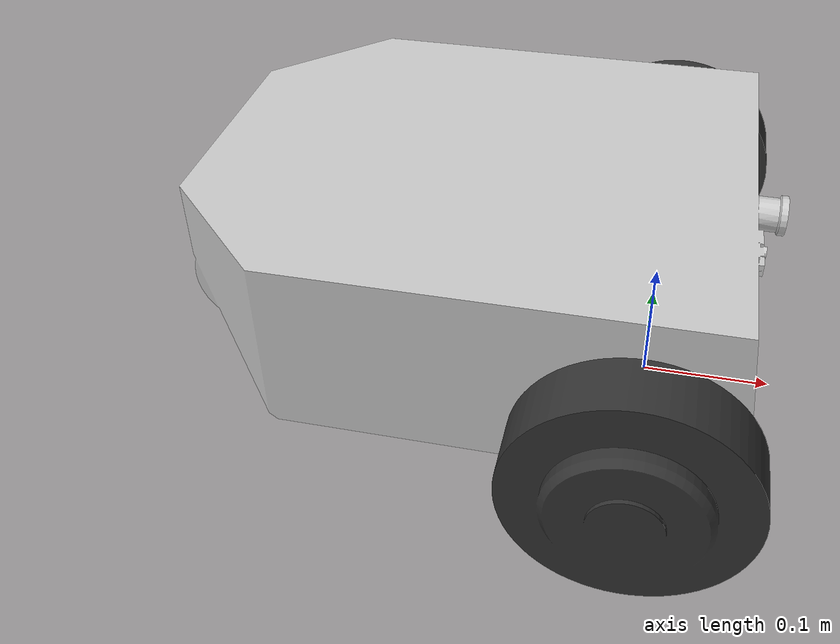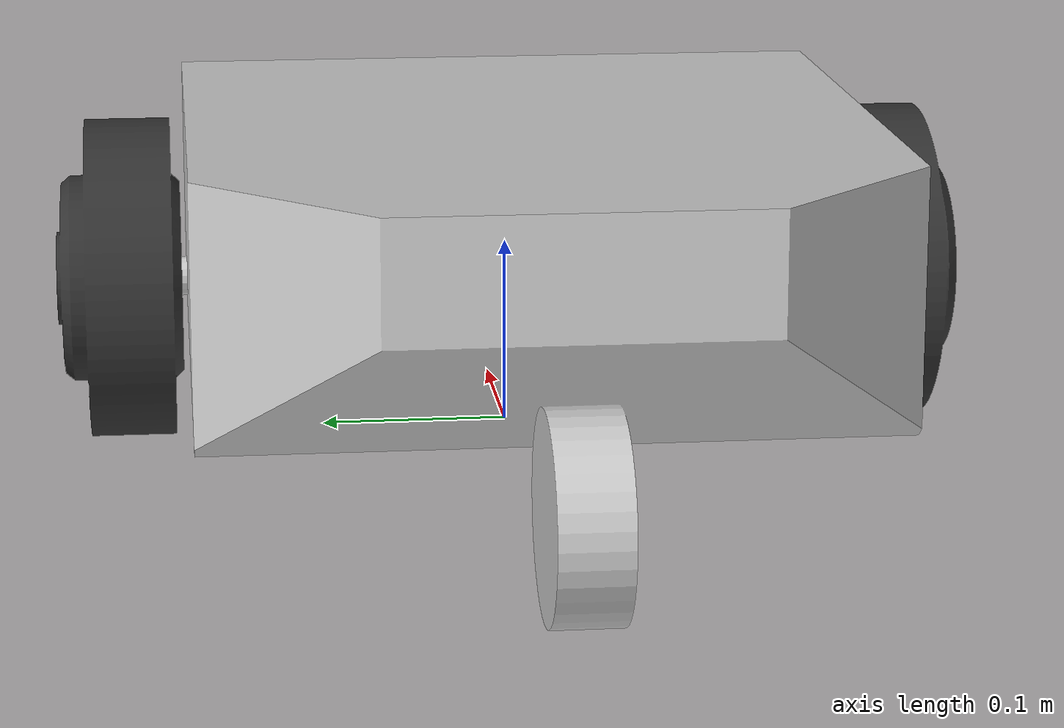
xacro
<?xml version="1.0" ?>
<robot name="f120a" xmlns:xacro="http://www.ros.org/wiki/xacro">

<xacro:include filename="$(find f120a_description)/urdf/materials.xacro" />
<xacro:include filename="$(find f120a_description)/urdf/f120a.gazebo" />

<link name="base_footprint" />

<joint name="base_joint" type="fixed">
  <parent link="base_footprint"/>
  <child link="base_link" />
  <origin xyz="-0.108 0 0" rpy="0 0 -1.5708"/>
</joint>

<link name="base_link">
  <inertial>
    <origin xyz="6.540114906371634e-07 -0.003250873034356485 0.120269680948673" rpy="0 0 0"/>
    <mass value="26.535431"/>
    <inertia ixx="0.2129" iyy="0.2979" izz="0.4209"
             ixy="-0.000036" iyz="0.008147"
             ixz="0.0000368"/>
  </inertial>
  <visual>
    <origin xyz="0 0 0" rpy="0 0 0"/>
    <geometry>
      <mesh filename="package://f120a_description/meshes/base_link.stl" scale="0.001 0.001 0.001"/>
    </geometry>
    <material name="silver"/>
  </visual>
  <collision>
    <origin xyz="0 0 0" rpy="0 0 0"/>
    <geometry>
      <mesh filename="package://f120a_description/meshes/base_link.stl" scale="0.001 0.001 0.001"/>
    </geometry>
  </collision>
</link>

<link name="right_wheel_1">
  <inertial>
    <origin xyz="0.0 0.0 -0.001" rpy="0 1.5708 0"/>
    <mass value="3.241197"/>
    <inertia ixx="0.01025" iyy="0.00621" izz="0.006211"
             ixy="0.0" iyz="0.0"
             ixz="0.0"/>
  </inertial>
  <visual>
    <origin xyz="-0.085 -0.108 0.202" rpy="0 1.5708 0"/>
    <geometry>
      <mesh filename="package://f120a_description/meshes/right_wheel_1.stl" scale="0.001 0.001 0.001"/>
    </geometry>
    <material name="dark_grey"/>
  </visual>
  <collision>
    <origin xyz="-0.085 -0.108 0.202" rpy="0 1.5708 0"/>
    <geometry>
      <mesh filename="package://f120a_description/meshes/right_wheel_1.stl" scale="0.001 0.001 0.001"/>
    </geometry>
  </collision>
</link>

<link name="left_wheel_1">
  <inertial>
    <origin xyz="0.0 0.0 0.001" rpy="0 1.5708 0"/>
    <mass value="3.241197"/>
    <inertia ixx="0.01025" iyy="0.00621" izz="0.006211"
             ixy="0.0" iyz="0.0"
             ixz="0.0"/>
  </inertial>
  <visual>
    <origin xyz="-0.085 -0.108 -0.202" rpy="0 1.5708 0"/>
    <geometry>
      <mesh filename="package://f120a_description/meshes/left_wheel_1.stl" scale="0.001 0.001 0.001"/>
    </geometry>
    <material name="dark_grey"/>
  </visual>
  <collision>
    <origin xyz="-0.085 -0.108 -0.202" rpy="0 1.5708 0"/>
    <geometry>
      <mesh filename="package://f120a_description/meshes/left_wheel_1.stl" scale="0.001 0.001 0.001"/>
    </geometry>
  </collision>
</link>

<joint name="right_wheel_joint" type="continuous">
  <origin xyz="0.202 0.108 0.085" rpy="0 -1.5708 0"/>
  <parent link="base_link"/>
  <child link="right_wheel_1"/>
  <axis xyz="0.0 0.0 1.0"/>
</joint>

<joint name="left_wheel_joint" type="continuous">
  <origin xyz="-0.202 0.108 0.085" rpy="0 -1.5708 0"/>
  <parent link="base_link"/>
  <child link="left_wheel_1"/>
  <axis xyz="0.0 0.0 1.0"/>
</joint>

</robot>

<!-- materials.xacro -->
<robot name="f120a" xmlns:xacro="http://www.ros.org/wiki/xacro" >

<material name="silver">
  <color rgba="0.800 0.800 0.800 1.000"/>
</material>

<material name="dark_grey">
  <color rgba="0.200 0.200 0.200 1.000"/>
</material>

</robot>

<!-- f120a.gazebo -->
<robot name="f120a" xmlns:xacro="http://www.ros.org/wiki/xacro" >

<xacro:property name="body_color" value="Gazebo/Silver" />
<xacro:property name="wheel_color" value="Gazebo/DarkGray" />

<gazebo reference="base_link">
  <material>${body_color}</material>
  <mu1>0.02</mu1>
  <mu2>0.02</mu2>
  <selfCollide>true</selfCollide>
  <gravity>true</gravity>
</gazebo>

<gazebo reference="right_wheel_1">
  <mu1>10000</mu1>
  <mu2>10000</mu2>
  <material>${wheel_color}</material>
  <selfCollide>true</selfCollide>
  <gravity>true</gravity>
</gazebo>

<gazebo reference="left_wheel_1">
  <mu1>10000</mu1>
  <mu2>10000</mu2>
  <material>${wheel_color}</material>
  <selfCollide>true</selfCollide>
  <gravity>true</gravity>
</gazebo>

<gazebo>
  <plugin name="f120a_controller" filename="libgazebo_ros_diff_drive.so">
    <commandTopic>cmd_vel</commandTopic>
    <odometryTopic>odom</odometryTopic>
    <odometryFrame>odom</odometryFrame>
    <odometrySource>world</odometrySource>
    <publishOdomTF>true</publishOdomTF>
    <robotBaseFrame>base_footprint</robotBaseFrame>
    <publishWheelTF>false</publishWheelTF>
    <publishTf>true</publishTf>
    <publishWheelJointState>true</publishWheelJointState>
    <legacyMode>false</legacyMode>
    <updateRate>30</updateRate>
    <leftJoint>left_wheel_joint</leftJoint>
    <rightJoint>right_wheel_joint</rightJoint>
    <wheelSeparation>0.404</wheelSeparation>
    <wheelDiameter>0.170</wheelDiameter>
    <wheelAcceleration>1</wheelAcceleration>
    <wheelTorque>50</wheelTorque>
    <rosDebugLevel>na</rosDebugLevel>
  </plugin>
</gazebo>

</robot>
